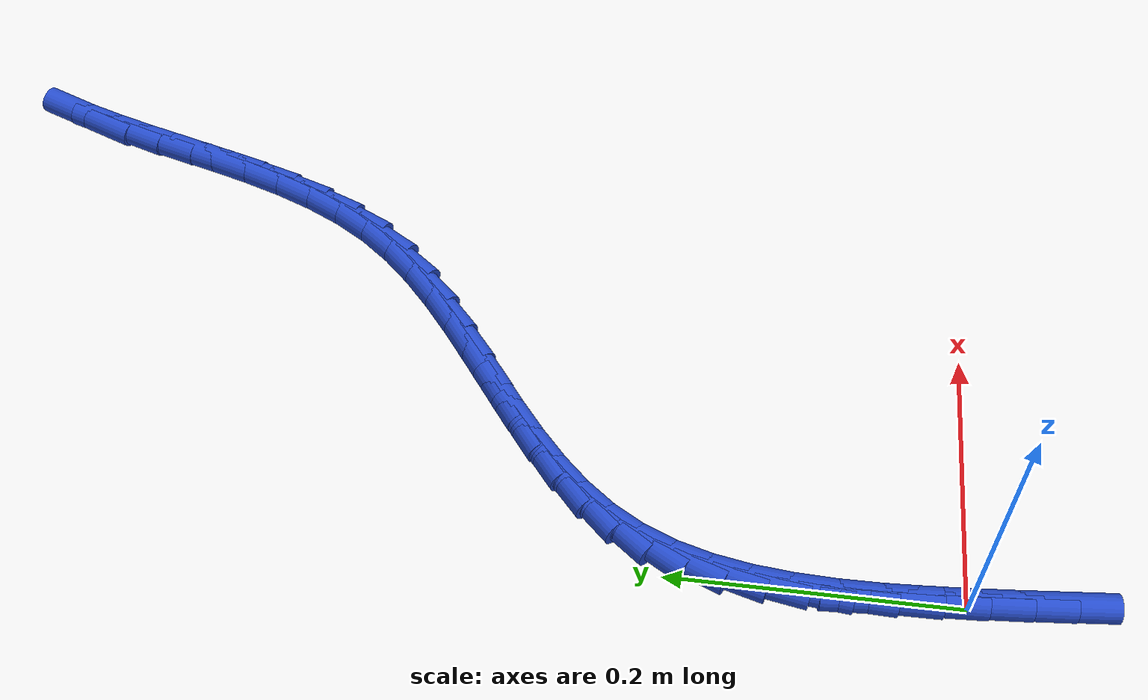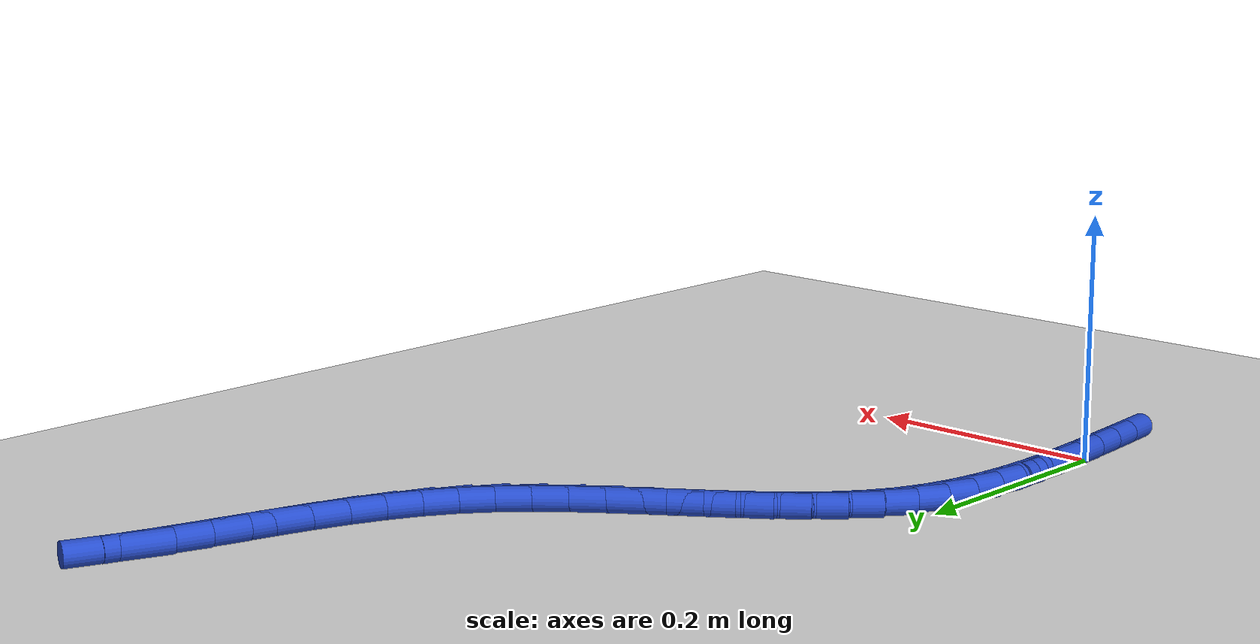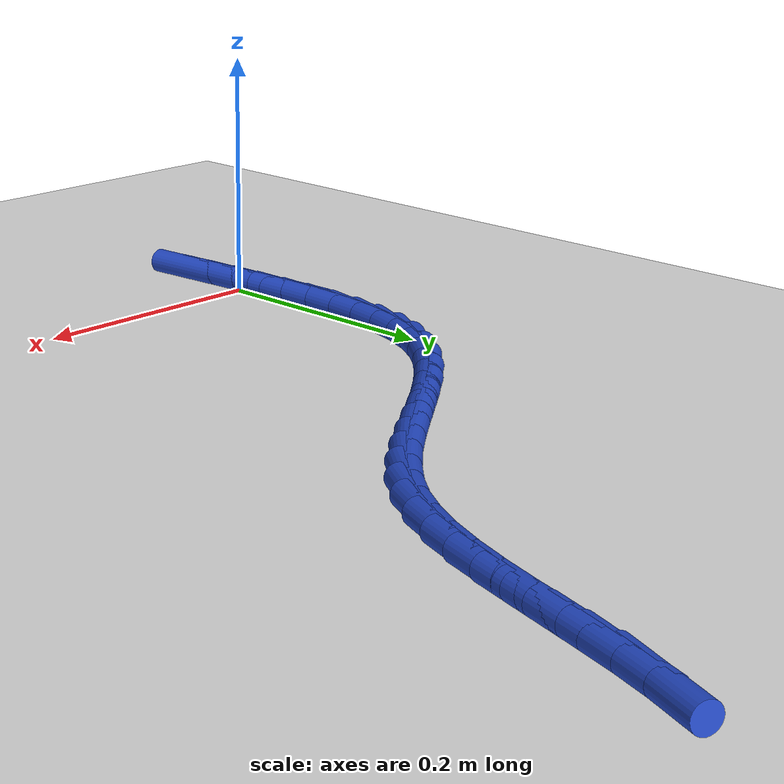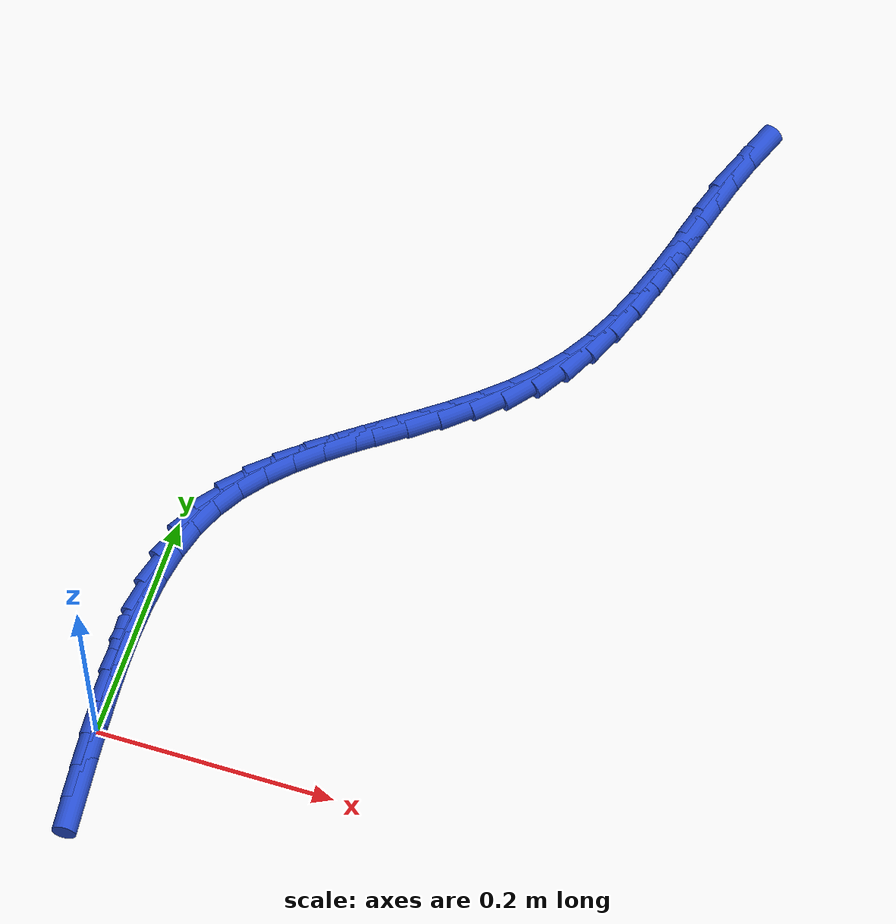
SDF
<sdf version="1.6">
 <world name="default">
  <model name="ground_plane">
   <static>1</static>
   <link name="link">
    <collision name="collision">
     <geometry><plane><normal>0 0 1</normal><size>100 100</size></plane></geometry>
     <surface><friction><ode><mu>100</mu><mu2>50</mu2></ode></friction></surface>
    </collision>
    <visual name="visual">
     <cast_shadows>0</cast_shadows>
     <geometry><plane><normal>0 0 1</normal><size>100 100</size></plane></geometry>
     <material>
      <script><uri>file://media/materials/scripts/gazebo.material</uri><name>Gazebo/WhiteGlow</name></script>
     </material>
    </visual>
   </link>
  </model>
  <model name="line">
   <link name="link_0">
    <pose>-1.3877787807814457e-17 -1.3877787807814457e-17 0.01 0 1.57 -1.5056627772746152</pose>
    <collision name="collision">
     <geometry><cylinder><radius>0.01</radius><length>0.08</length></cylinder></geometry>
    </collision>
    <visual name="visual">
     <material>
      <script><name>Gazebo/Blue</name><uri>file://media/materials/scripts/gazebo.material</uri></script>
     </material>
     <geometry><cylinder><radius>0.01</radius><length>0.08</length></cylinder></geometry>
    </visual>
   </link>
   <link name="link_1">
    <pose>-0.0018641513802052682 0.028579963817722043 0.01 0 1.57 -1.526857474830623</pose>
    <collision name="collision">
     <geometry><cylinder><radius>0.01</radius><length>0.08</length></cylinder></geometry>
    </collision>
    <visual name="visual">
     <material>
      <script><name>Gazebo/Blue</name><uri>file://media/materials/scripts/gazebo.material</uri></script>
     </material>
     <geometry><cylinder><radius>0.01</radius><length>0.08</length></cylinder></geometry>
    </visual>
   </link>
   <link name="link_2">
    <pose>-0.003132722673962283 0.05743267057885642 0.01 0 1.57 -1.5605036924303264</pose>
    <collision name="collision">
     <geometry><cylinder><radius>0.01</radius><length>0.08</length></cylinder></geometry>
    </collision>
    <visual name="visual">
     <material>
      <script><name>Gazebo/Blue</name><uri>file://media/materials/scripts/gazebo.material</uri></script>
     </material>
     <geometry><cylinder><radius>0.01</radius><length>0.08</length></cylinder></geometry>
    </visual>
   </link>
   <link name="link_3">
    <pose>-0.0034292147071202234 0.08623788726355473 0.01 0 1.57 1.5338167391921096</pose>
    <collision name="collision">
     <geometry><cylinder><radius>0.01</radius><length>0.08</length></cylinder></geometry>
    </collision>
    <visual name="visual">
     <material>
      <script><name>Gazebo/Blue</name><uri>file://media/materials/scripts/gazebo.material</uri></script>
     </material>
     <geometry><cylinder><radius>0.01</radius><length>0.08</length></cylinder></geometry>
    </visual>
   </link>
   <link name="link_4">
    <pose>-0.0023771283055282616 0.11467538085196868 0.01 0 1.57 1.4710488130899328</pose>
    <collision name="collision">
     <geometry><cylinder><radius>0.01</radius><length>0.08</length></cylinder></geometry>
    </collision>
    <visual name="visual">
     <material>
      <script><name>Gazebo/Blue</name><uri>file://media/materials/scripts/gazebo.material</uri></script>
     </material>
     <geometry><cylinder><radius>0.01</radius><length>0.08</length></cylinder></geometry>
    </visual>
   </link>
   <link name="link_5">
    <pose>0.0004000357049644288 0.14242491832424994 0.01 0 1.57 1.3903391922496144</pose>
    <collision name="collision">
     <geometry><cylinder><radius>0.01</radius><length>0.08</length></cylinder></geometry>
    </collision>
    <visual name="visual">
     <material>
      <script><name>Gazebo/Blue</name><uri>file://media/materials/scripts/gazebo.material</uri></script>
     </material>
     <geometry><cylinder><radius>0.01</radius><length>0.08</length></cylinder></geometry>
    </visual>
   </link>
   <link name="link_6">
    <pose>0.005278776498508688 0.16916626666055012 0.01 0 1.57 1.289008361410767</pose>
    <collision name="collision">
     <geometry><cylinder><radius>0.01</radius><length>0.08</length></cylinder></geometry>
    </collision>
    <visual name="visual">
     <material>
      <script><name>Gazebo/Blue</name><uri>file://media/materials/scripts/gazebo.material</uri></script>
     </material>
     <geometry><cylinder><radius>0.01</radius><length>0.08</length></cylinder></geometry>
    </visual>
   </link>
   <link name="link_7">
    <pose>0.01263559324925534 0.1945791928410209 0.01 0 1.57 1.1649555800092752</pose>
    <collision name="collision">
     <geometry><cylinder><radius>0.01</radius><length>0.08</length></cylinder></geometry>
    </collision>
    <visual name="visual">
     <material>
      <script><name>Gazebo/Blue</name><uri>file://media/materials/scripts/gazebo.material</uri></script>
     </material>
     <geometry><cylinder><radius>0.01</radius><length>0.08</length></cylinder></geometry>
    </visual>
   </link>
   <link name="link_8">
    <pose>0.022846985131355226 0.21834346384581393 0.01 0 1.57 1.0220207684013998</pose>
    <collision name="collision">
     <geometry><cylinder><radius>0.01</radius><length>0.08</length></cylinder></geometry>
    </collision>
    <visual name="visual">
     <material>
      <script><name>Gazebo/Blue</name><uri>file://media/materials/scripts/gazebo.material</uri></script>
     </material>
     <geometry><cylinder><radius>0.01</radius><length>0.08</length></cylinder></geometry>
    </visual>
   </link>
   <link name="link_9">
    <pose>0.03620991123153847 0.24019895994932172 0.01 0 1.57 0.8910838151363568</pose>
    <collision name="collision">
     <geometry><cylinder><radius>0.01</radius><length>0.08</length></cylinder></geometry>
    </collision>
    <visual name="visual">
     <material>
      <script><name>Gazebo/Blue</name><uri>file://media/materials/scripts/gazebo.material</uri></script>
     </material>
     <geometry><cylinder><radius>0.01</radius><length>0.08</length></cylinder></geometry>
    </visual>
   </link>
   <link name="link_10">
    <pose>0.052461989767846745 0.26030828942776263 0.01 0 1.57 0.787225298565199</pose>
    <collision name="collision">
     <geometry><cylinder><radius>0.01</radius><length>0.08</length></cylinder></geometry>
    </collision>
    <visual name="visual">
     <material>
      <script><name>Gazebo/Blue</name><uri>file://media/materials/scripts/gazebo.material</uri></script>
     </material>
     <geometry><cylinder><radius>0.01</radius><length>0.08</length></cylinder></geometry>
    </visual>
   </link>
   <link name="link_11">
    <pose>0.07110087785035743 0.2790154137989366 0.01 0 1.57 0.710278909525239</pose>
    <collision name="collision">
     <geometry><cylinder><radius>0.01</radius><length>0.08</length></cylinder></geometry>
    </collision>
    <visual name="visual">
     <material>
      <script><name>Gazebo/Blue</name><uri>file://media/materials/scripts/gazebo.material</uri></script>
     </material>
     <geometry><cylinder><radius>0.01</radius><length>0.08</length></cylinder></geometry>
    </visual>
   </link>
   <link name="link_12">
    <pose>0.09162331264807584 0.2966649898362074 0.01 0 1.57 0.6582274548759278</pose>
    <collision name="collision">
     <geometry><cylinder><radius>0.01</radius><length>0.08</length></cylinder></geometry>
    </collision>
    <visual name="visual">
     <material>
      <script><name>Gazebo/Blue</name><uri>file://media/materials/scripts/gazebo.material</uri></script>
     </material>
     <geometry><cylinder><radius>0.01</radius><length>0.08</length></cylinder></geometry>
    </visual>
   </link>
   <link name="link_13">
    <pose>0.11352603133000733 0.3136016743129392 0.01 0 1.57 0.6288355130759969</pose>
    <collision name="collision">
     <geometry><cylinder><radius>0.01</radius><length>0.08</length></cylinder></geometry>
    </collision>
    <visual name="visual">
     <material>
      <script><name>Gazebo/Blue</name><uri>file://media/materials/scripts/gazebo.material</uri></script>
     </material>
     <geometry><cylinder><radius>0.01</radius><length>0.08</length></cylinder></geometry>
    </visual>
   </link>
   <link name="link_14">
    <pose>0.13630577106515712 0.33017012400249596 0.01 0 1.57 0.6204398951449394</pose>
    <collision name="collision">
     <geometry><cylinder><radius>0.01</radius><length>0.08</length></cylinder></geometry>
    </collision>
    <visual name="visual">
     <material>
      <script><name>Gazebo/Blue</name><uri>file://media/materials/scripts/gazebo.material</uri></script>
     </material>
     <geometry><cylinder><radius>0.01</radius><length>0.08</length></cylinder></geometry>
    </visual>
   </link>
   <link name="link_15">
    <pose>0.1594592690225307 0.34671499567824166 0.01 0 1.57 0.6322314534657636</pose>
    <collision name="collision">
     <geometry><cylinder><radius>0.01</radius><length>0.08</length></cylinder></geometry>
    </collision>
    <visual name="visual">
     <material>
      <script><name>Gazebo/Blue</name><uri>file://media/materials/scripts/gazebo.material</uri></script>
     </material>
     <geometry><cylinder><radius>0.01</radius><length>0.08</length></cylinder></geometry>
    </visual>
   </link>
   <link name="link_16">
    <pose>0.18248326237113321 0.3635809461135402 0.01 0 1.57 0.6642709617409228</pose>
    <collision name="collision">
     <geometry><cylinder><radius>0.01</radius><length>0.08</length></cylinder></geometry>
    </collision>
    <visual name="visual">
     <material>
      <script><name>Gazebo/Blue</name><uri>file://media/materials/scripts/gazebo.material</uri></script>
     </material>
     <geometry><cylinder><radius>0.01</radius><length>0.08</length></cylinder></geometry>
    </visual>
   </link>
   <link name="link_17">
    <pose>0.20487448827997012 0.38111263208175544 0.01 0 1.57 0.7173300370963076</pose>
    <collision name="collision">
     <geometry><cylinder><radius>0.01</radius><length>0.08</length></cylinder></geometry>
    </collision>
    <visual name="visual">
     <material>
      <script><name>Gazebo/Blue</name><uri>file://media/materials/scripts/gazebo.material</uri></script>
     </material>
     <geometry><cylinder><radius>0.01</radius><length>0.08</length></cylinder></geometry>
    </visual>
   </link>
   <link name="link_18">
    <pose>0.22612968391804666 0.3996547103562516 0.01 0 1.57 0.7925153110881008</pose>
    <collision name="collision">
     <geometry><cylinder><radius>0.01</radius><length>0.08</length></cylinder></geometry>
    </collision>
    <visual name="visual">
     <material>
      <script><name>Gazebo/Blue</name><uri>file://media/materials/scripts/gazebo.material</uri></script>
     </material>
     <geometry><cylinder><radius>0.01</radius><length>0.08</length></cylinder></geometry>
    </visual>
   </link>
   <link name="link_19">
    <pose>0.2457455864543683 0.4195518377103926 0.01 0 1.57 0.8905494043133252</pose>
    <collision name="collision">
     <geometry><cylinder><radius>0.01</radius><length>0.08</length></cylinder></geometry>
    </collision>
    <visual name="visual">
     <material>
      <script><name>Gazebo/Blue</name><uri>file://media/materials/scripts/gazebo.material</uri></script>
     </material>
     <geometry><cylinder><radius>0.01</radius><length>0.08</length></cylinder></geometry>
    </visual>
   </link>
   <link name="link_20">
    <pose>0.2632189330579402 0.4411486709175423 0.01 0 1.57 1.0043668266328554</pose>
    <collision name="collision">
     <geometry><cylinder><radius>0.01</radius><length>0.08</length></cylinder></geometry>
    </collision>
    <visual name="visual">
     <material>
      <script><name>Gazebo/Blue</name><uri>file://media/materials/scripts/gazebo.material</uri></script>
     </material>
     <geometry><cylinder><radius>0.01</radius><length>0.08</length></cylinder></geometry>
    </visual>
   </link>
   <link name="link_21">
    <pose>0.2781854417625283 0.4646830403548929 0.01 0 1.57 1.1040819992891764</pose>
    <collision name="collision">
     <geometry><cylinder><radius>0.01</radius><length>0.08</length></cylinder></geometry>
    </collision>
    <visual name="visual">
     <material>
      <script><name>Gazebo/Blue</name><uri>file://media/materials/scripts/gazebo.material</uri></script>
     </material>
     <geometry><cylinder><radius>0.01</radius><length>0.08</length></cylinder></geometry>
    </visual>
   </link>
   <link name="link_22">
    <pose>0.2908994452443325 0.48991728379866534 0.01 0 1.57 1.1818099463520608</pose>
    <collision name="collision">
     <geometry><cylinder><radius>0.01</radius><length>0.08</length></cylinder></geometry>
    </collision>
    <visual name="visual">
     <material>
      <script><name>Gazebo/Blue</name><uri>file://media/materials/scripts/gazebo.material</uri></script>
     </material>
     <geometry><cylinder><radius>0.01</radius><length>0.08</length></cylinder></geometry>
    </visual>
   </link>
   <link name="link_23">
    <pose>0.3017873306543706 0.5164814908949382 0.01 0 1.57 1.2388330062978474</pose>
    <collision name="collision">
     <geometry><cylinder><radius>0.01</radius><length>0.08</length></cylinder></geometry>
    </collision>
    <visual name="visual">
     <material>
      <script><name>Gazebo/Blue</name><uri>file://media/materials/scripts/gazebo.material</uri></script>
     </material>
     <geometry><cylinder><radius>0.01</radius><length>0.08</length></cylinder></geometry>
    </visual>
   </link>
   <link name="link_24">
    <pose>0.311275492129174 0.5440057459204385 0.01 0 1.57 1.2767142184721187</pose>
    <collision name="collision">
     <geometry><cylinder><radius>0.01</radius><length>0.08</length></cylinder></geometry>
    </collision>
    <visual name="visual">
     <material>
      <script><name>Gazebo/Blue</name><uri>file://media/materials/scripts/gazebo.material</uri></script>
     </material>
     <geometry><cylinder><radius>0.01</radius><length>0.08</length></cylinder></geometry>
    </visual>
   </link>
   <link name="link_25">
    <pose>0.31979032380527445 0.5721201331518927 0.01 0 1.57 1.2966684916331312</pose>
    <collision name="collision">
     <geometry><cylinder><radius>0.01</radius><length>0.08</length></cylinder></geometry>
    </collision>
    <visual name="visual">
     <material>
      <script><name>Gazebo/Blue</name><uri>file://media/materials/scripts/gazebo.material</uri></script>
     </material>
     <geometry><cylinder><radius>0.01</radius><length>0.08</length></cylinder></geometry>
    </visual>
   </link>
   <link name="link_26">
    <pose>0.32775821981920356 0.6004547368660276 0.01 0 1.57 1.2992496240136764</pose>
    <collision name="collision">
     <geometry><cylinder><radius>0.01</radius><length>0.08</length></cylinder></geometry>
    </collision>
    <visual name="visual">
     <material>
      <script><name>Gazebo/Blue</name><uri>file://media/materials/scripts/gazebo.material</uri></script>
     </material>
     <geometry><cylinder><radius>0.01</radius><length>0.08</length></cylinder></geometry>
    </visual>
   </link>
   <link name="link_27">
    <pose>0.3356055743074926 0.6286396413395694 0.01 0 1.57 1.2842007915698364</pose>
    <collision name="collision">
     <geometry><cylinder><radius>0.01</radius><length>0.08</length></cylinder></geometry>
    </collision>
    <visual name="visual">
     <material>
      <script><name>Gazebo/Blue</name><uri>file://media/materials/scripts/gazebo.material</uri></script>
     </material>
     <geometry><cylinder><radius>0.01</radius><length>0.08</length></cylinder></geometry>
    </visual>
   </link>
   <link name="link_28">
    <pose>0.3437587814066733 0.656304930849245 0.01 0 1.57 1.2503841151551327</pose>
    <collision name="collision">
     <geometry><cylinder><radius>0.01</radius><length>0.08</length></cylinder></geometry>
    </collision>
    <visual name="visual">
     <material>
      <script><name>Gazebo/Blue</name><uri>file://media/materials/scripts/gazebo.material</uri></script>
     </material>
     <geometry><cylinder><radius>0.01</radius><length>0.08</length></cylinder></geometry>
    </visual>
   </link>
   <link name="link_29">
    <pose>0.35264423525327737 0.6830806896717811 0.01 0 1.57 1.1957896744040493</pose>
    <collision name="collision">
     <geometry><cylinder><radius>0.01</radius><length>0.08</length></cylinder></geometry>
    </collision>
    <visual name="visual">
     <material>
      <script><name>Gazebo/Blue</name><uri>file://media/materials/scripts/gazebo.material</uri></script>
     </material>
     <geometry><cylinder><radius>0.01</radius><length>0.08</length></cylinder></geometry>
    </visual>
   </link>
   <link name="link_278">
    <pose>0.004526620882154718 -0.05564037990500452 0.01 0 1.57 -1.4847651647433282</pose>
    <collision name="collision">
     <geometry><cylinder><radius>0.01</radius><length>0.08</length></cylinder></geometry>
    </collision>
    <visual name="visual">
     <material>
      <script><name>Gazebo/Blue</name><uri>file://media/materials/scripts/gazebo.material</uri></script>
     </material>
     <geometry><cylinder><radius>0.01</radius><length>0.08</length></cylinder></geometry>
    </visual>
   </link>
   <link name="link_279">
    <pose>0.0021479291123779735 -0.028059439501859917 0.01 0 1.57 -1.4943960718377785</pose>
    <collision name="collision">
     <geometry><cylinder><radius>0.01</radius><length>0.08</length></cylinder></geometry>
    </collision>
    <visual name="visual">
     <material>
      <script><name>Gazebo/Blue</name><uri>file://media/materials/scripts/gazebo.material</uri></script>
     </material>
     <geometry><cylinder><radius>0.01</radius><length>0.08</length></cylinder></geometry>
    </visual>
   </link>
   <link name="link_280">
    <pose>-2.949029909160572e-17 1.5265566588595902e-16 0.01 0 1.57 -1.5035788748436791</pose>
    <collision name="collision">
     <geometry><cylinder><radius>0.01</radius><length>0.08</length></cylinder></geometry>
    </collision>
    <visual name="visual">
     <material>
      <script><name>Gazebo/Blue</name><uri>file://media/materials/scripts/gazebo.material</uri></script>
     </material>
     <geometry><cylinder><radius>0.01</radius><length>0.08</length></cylinder></geometry>
    </visual>
   </link>
   <link name="link_281">
    <pose>-0.0019288482000806232 0.028652415465120866 0.01 0 1.57 -1.512230654392565</pose>
    <collision name="collision">
     <geometry><cylinder><radius>0.01</radius><length>0.08</length></cylinder></geometry>
    </collision>
    <visual name="visual">
     <material>
      <script><name>Gazebo/Blue</name><uri>file://media/materials/scripts/gazebo.material</uri></script>
     </material>
     <geometry><cylinder><radius>0.01</radius><length>0.08</length></cylinder></geometry>
    </visual>
   </link>
   <link name="link_282">
    <pose>-0.003650297232965062 0.05801228375804658 0.01 0 1.57 -1.5079563403454155</pose>
    <collision name="collision">
     <geometry><cylinder><radius>0.01</radius><length>0.08</length></cylinder></geometry>
    </collision>
    <visual name="visual">
     <material>
      <script><name>Gazebo/Blue</name><uri>file://media/materials/scripts/gazebo.material</uri></script>
     </material>
     <geometry><cylinder><radius>0.01</radius><length>0.08</length></cylinder></geometry>
    </visual>
   </link>
  </model>
 </world>
</sdf>
